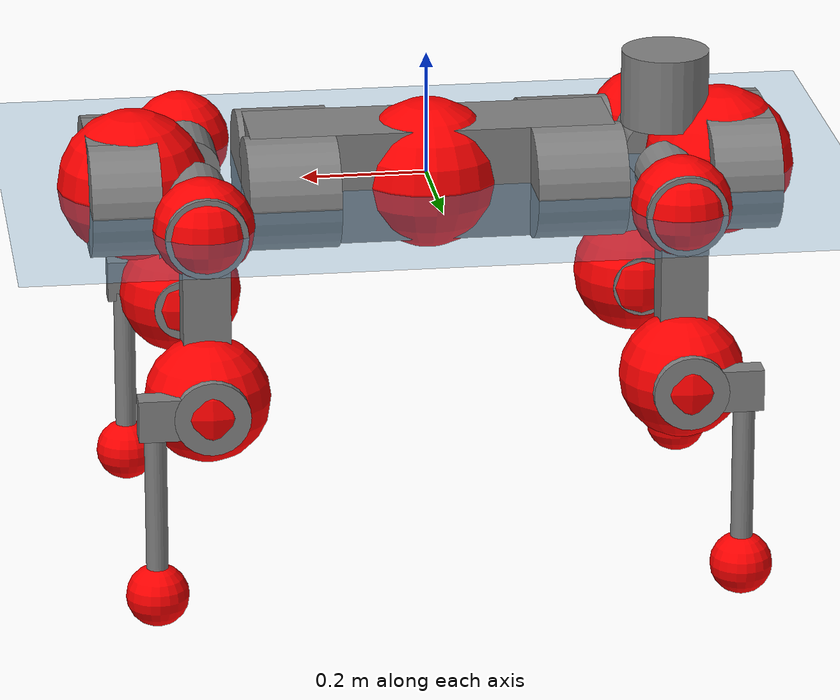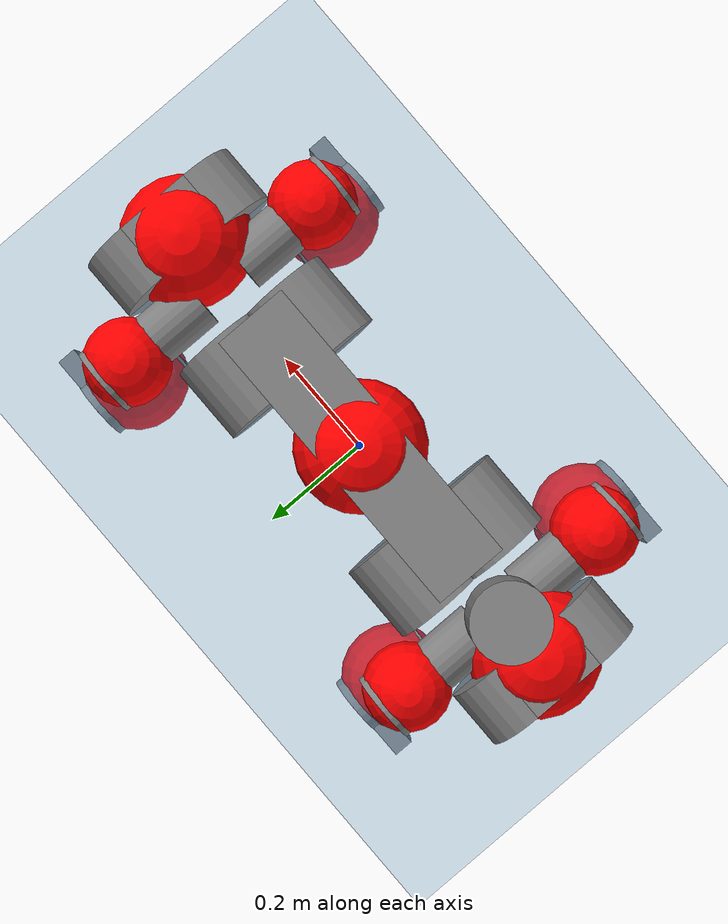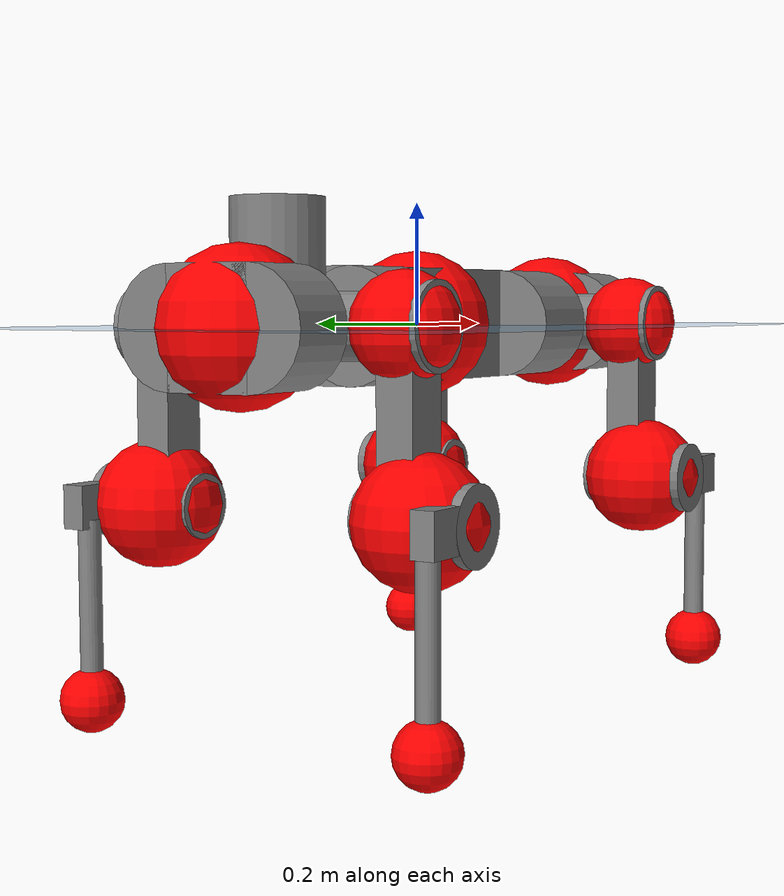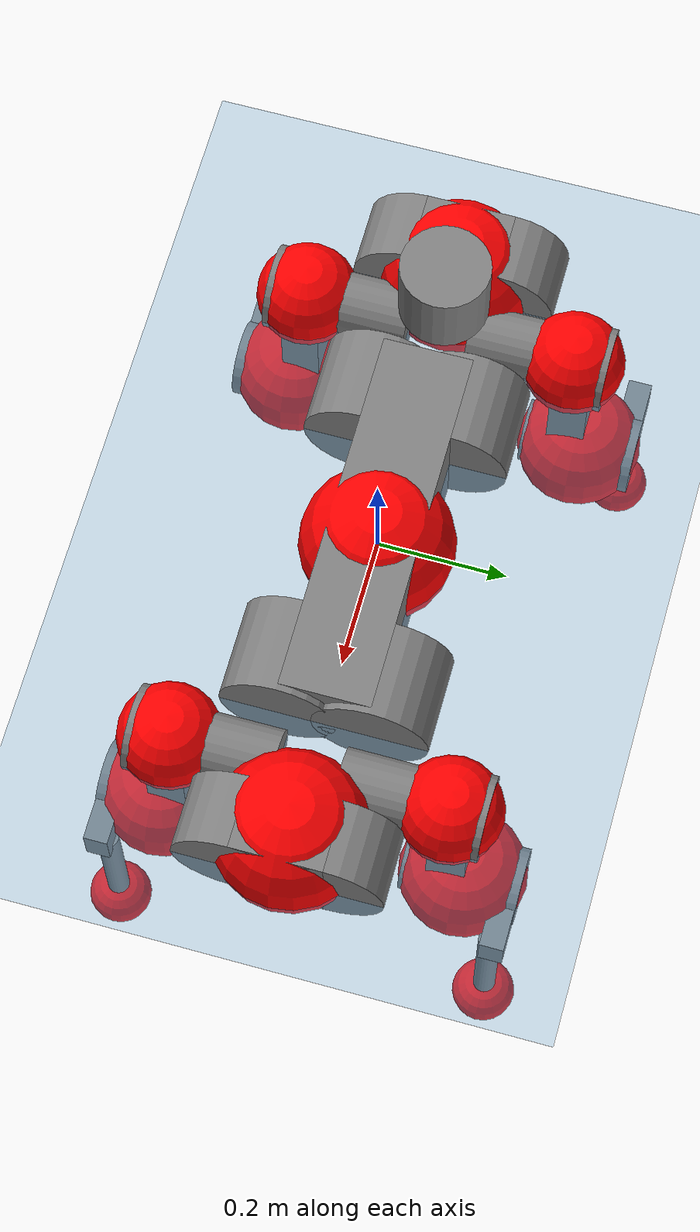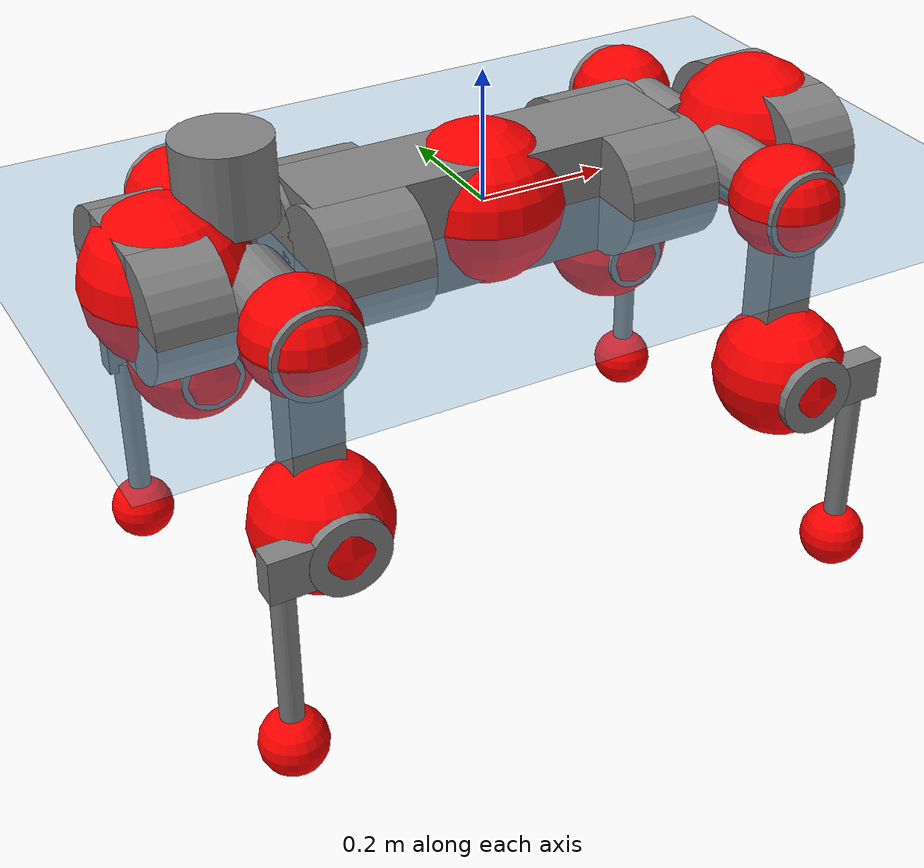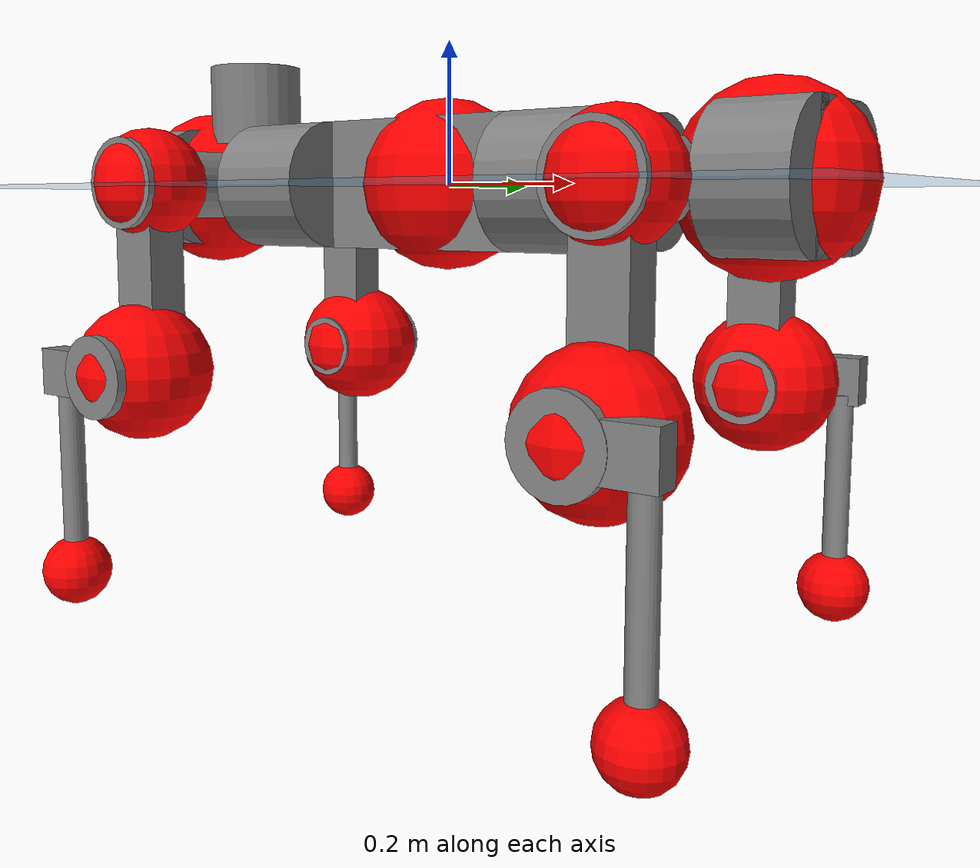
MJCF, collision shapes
<mujoco model="anymal_c">
  <compiler angle="radian" assetdir="assets" balanceinertia="true" inertiafromgeom="false"/>

  <option timestep="0.005" density="1.2" viscosity="2e-05"/>

  <size nkey="1"/>

  <visual>
    <quality shadowsize="8192"/>
    <map shadowclip="0.5"/>
  </visual>

  <default>
    <default class="/">
      <material specular="0" shininess="0.25"/>
      <geom contype="0" conaffinity="0" group="1" solref="-1000 -80"/>
      <site size="0.01 0.005 0.005" group="5"/>
      <general forcelimited="true" forcerange="-80 80" biastype="affine" gainprm="80" biasprm="0 -80 -2"/>
      <default class="anymal_c">
        <joint armature="0.01" damping="0.01" frictionloss="0.1"/>
        <default class="visual">
          <geom type="mesh" group="2"/>
          <default class="visual_zflip"/>
        </default>
        <default class="collision">
          <geom type="cylinder" group="3"/>
          <default class="foot">
            <geom size="0.03 0 0" type="sphere" condim="6" priority="1" friction="0.8 0.02 0.01" solimp="0.015 1 0.03"/>
          </default>
        </default>
      </default>
      <default class="reward_collision_sphere">
        <geom group="5" rgba="1 0 0 1"/>
      </default>
    </default>
  </default>

  <asset>
    <texture type="skybox" colorspace="auto" name="//unnamed_texture_0" builtin="gradient" rgb1="0.95 0.95 0.95" rgb2="0.95 0.95 0.95" width="100" height="600"/>
    <texture type="2d" colorspace="auto" name="texplane" builtin="checker" rgb1="0.345 0.575 0.748" rgb2="0.345 0.575 0.748" markrgb="1 1 1" width="512" height="512"/>
    <texture type="2d" colorspace="linear" name="base" file="base.png"/>
    <texture type="2d" colorspace="linear" name="top_shell" file="top_shell.png"/>
    <texture type="2d" colorspace="linear" name="bottom_shell" file="bottom_shell.png"/>
    <texture type="2d" colorspace="linear" name="remote" file="remote.png"/>
    <texture type="2d" colorspace="linear" name="hatch" file="hatch.png"/>
    <texture type="2d" colorspace="linear" name="handle" file="handle.png"/>
    <texture type="2d" colorspace="linear" name="face" file="face.png"/>
    <texture type="2d" colorspace="linear" name="battery" file="battery.png"/>
    <texture type="2d" colorspace="linear" name="lidar_cage" file="lidar_cage.png"/>
    <texture type="2d" colorspace="linear" name="depth_camera" file="depth_camera.png"/>
    <texture type="2d" colorspace="linear" name="wide_angle_camera" file="wide_angle_camera.png"/>
    <texture type="2d" colorspace="linear" name="lidar" file="lidar.png"/>
    <texture type="2d" colorspace="linear" name="drive" file="drive.png"/>
    <texture type="2d" colorspace="linear" name="hip_l" file="hip_l.png"/>
    <texture type="2d" colorspace="linear" name="shank_l" file="shank_l.png"/>
    <texture type="2d" colorspace="linear" name="foot" file="foot.png"/>
    <texture type="2d" colorspace="linear" name="thigh" file="thigh.png"/>
    <texture type="2d" colorspace="linear" name="shank_r" file="shank_r.png"/>
    <texture type="2d" colorspace="linear" name="hip_r" file="hip_r.png"/>
    <material name="MatPlane" class="/" texture="texplane" texuniform="true" texrepeat="2 2" specular="0.9" shininess="0.5"/>
    <material name="black_plastic" class="/" rgba="0.007 0.007 0.007 1"/>
    <material name="green" class="/" rgba="0.052 0.178 0.033 1"/>
    <material name="red" class="/" rgba="0.178 0.006 0.005 1"/>
    <material name="yellow" class="/" rgba="0.178 0.119 0.006 1"/>
    <material name="lwl" class="/" rgba="0.8 0.8 0.8 1"/>
    <material name="base" class="/" texture="base"/>
    <material name="top_shell" class="/" texture="top_shell"/>
    <material name="bottom_shell" class="/" texture="bottom_shell"/>
    <material name="hip_l" class="/" texture="hip_l"/>
    <material name="thigh" class="/" texture="thigh"/>
    <material name="shank_l" class="/" texture="shank_l"/>
    <material name="foot" class="/" texture="foot"/>
    <material name="hip_r" class="/" texture="hip_r"/>
    <material name="shank" class="/" texture="shank_r"/>
    <material name="hatch" class="/" texture="hatch"/>
    <material name="remote" class="/" texture="remote"/>
    <material name="handle" class="/" texture="handle"/>
    <material name="face" class="/" texture="face"/>
    <material name="depth_camera" class="/" texture="depth_camera"/>
    <material name="wide_angle_camera" class="/" texture="wide_angle_camera"/>
    <material name="battery" class="/" texture="battery"/>
    <material name="lidar_cage" class="/" texture="lidar_cage"/>
    <material name="lidar" class="/" texture="lidar"/>
    <material name="drive" class="/" texture="drive"/>
    <mesh name="base_0" class="/" file="base_0.obj"/>
    <mesh name="base_1" class="/" file="base_1.obj"/>
    <mesh name="base_2" class="/" file="base_2.obj"/>
    <mesh name="base_3" class="/" file="base_3.obj"/>
    <mesh name="base_4" class="/" file="base_4.obj"/>
    <mesh name="base_5" class="/" file="base_5.obj"/>
    <mesh name="top_shell" class="/" file="top_shell.obj"/>
    <mesh name="bottom_shell" class="/" file="bottom_shell.obj"/>
    <mesh name="remote" class="/" file="remote.obj"/>
    <mesh name="handle" class="/" file="handle.obj"/>
    <mesh name="face" class="/" file="face.obj"/>
    <mesh name="wide_angle_camera" class="/" file="wide_angle_camera.obj"/>
    <mesh name="depth_camera" class="/" file="depth_camera.obj"/>
    <mesh name="battery" class="/" file="battery.obj"/>
    <mesh name="lidar_cage" class="/" file="lidar_cage.obj"/>
    <mesh name="lidar" class="/" file="lidar.obj"/>
    <mesh name="drive" class="/" file="drive.obj"/>
    <mesh name="hip_l" class="/" file="hip_l.obj"/>
    <mesh name="thigh" class="/" file="thigh.obj"/>
    <mesh name="shank_l" class="/" file="shank_l.obj"/>
    <mesh name="foot" class="/" file="foot.obj"/>
    <mesh name="hip_r" class="/" file="hip_r.obj"/>
    <mesh name="hatch" class="/" file="hatch.obj"/>
    <mesh name="shank_r" class="/" file="shank_r.obj"/>
  </asset>

  <worldbody>
    <geom name="floor" class="/" size="100 100 0.125" type="plane" group="0" material="MatPlane"/>
    <light name="toplight_shadow" class="/" pos="0 0 5" dir="0.0990148 0.0990148 -0.990148" type="directional" ambient="0.04 0.04 0.04" diffuse="0.55 0.55 0.55" specular="0.12 0.12 0.12"/>
    <light name="toplight_fill" class="/" pos="0 0 5" dir="0.0990148 0.0990148 -0.990148" type="directional" castshadow="false" ambient="0.04 0.04 0.04" diffuse="0.3 0.3 0.3" specular="0.08 0.08 0.08"/>
    <body name="trunk" childclass="anymal_c" pos="-0.00247552 -0.000951582 0.000939709" quat="1 -0.000554402 -0.000462355 0.00044858">
      <inertial pos="-0.000100595 -0.000361833 0.0469368" quat="0.502744 0.499245 0.501417 0.496572" mass="19.0674" diaginertia="0.828004 0.640452 0.178597"/>
      <joint name="//unnamed_joint_0" type="free" armature="0" damping="0" frictionloss="0"/>
      <geom name="//unnamed_geom_1" class="visual" material="green" mesh="base_0"/>
      <geom name="//unnamed_geom_2" class="visual" material="yellow" mesh="base_1"/>
      <geom name="//unnamed_geom_3" class="visual" material="red" mesh="base_2"/>
      <geom name="//unnamed_geom_4" class="visual" material="black_plastic" mesh="base_3"/>
      <geom name="//unnamed_geom_5" class="visual" material="lwl" mesh="base_4"/>
      <geom name="//unnamed_geom_6" class="visual" material="base" mesh="base_5"/>
      <geom name="trunk_1" class="collision" size="0.291466 0.0703539 0.090455" type="box"/>
      <geom name="trunk_2" class="collision" size="0.090455 0.0728665" pos="0.228767 0.0703792 0" quat="0.707107 0 0.707107 0"/>
      <geom name="trunk_3" class="collision" size="0.090455 0.0728665" pos="-0.228767 0.0703792 0" quat="0.707107 0 0.707107 0"/>
      <geom name="trunk_4" class="collision" size="0.090455 0.0728665" pos="0.228767 -0.0703792 0" quat="0.707107 0 0.707107 0"/>
      <geom name="trunk_5" class="collision" size="0.090455 0.0728665" pos="-0.228767 -0.0703792 0" quat="0.707107 0 0.707107 0"/>
      <geom name="//unnamed_geom_12" class="visual" material="top_shell" mesh="top_shell"/>
      <geom name="//unnamed_geom_13" class="visual" material="bottom_shell" mesh="bottom_shell"/>
      <geom name="//unnamed_geom_14" class="visual" material="remote" mesh="remote"/>
      <geom name="//unnamed_geom_15" class="visual" material="handle" mesh="handle"/>
      <geom name="//unnamed_geom_16" class="visual" pos="0.435972 0 0" quat="1 0 0 0" material="face" mesh="face"/>
      <geom name="trunk_6" class="collision" size="0.055278 0.0703539 0.090455" pos="0.493821 0 0" type="box"/>
      <geom name="//unnamed_geom_18" class="collision" size="0.090455 0.055278" pos="0.493821 0.0703792 0" quat="0.707107 0 0.707107 0"/>
      <geom name="//unnamed_geom_19" class="collision" size="0.090455 0.055278" pos="0.493821 -0.0703792 0" quat="0.707107 0 0.707107 0"/>
      <geom name="//unnamed_geom_20" class="visual" pos="0.48556 0 -0.0272588" quat="0.965926 0 0.258819 0" material="depth_camera" mesh="depth_camera"/>
      <geom name="//unnamed_geom_21" class="visual" pos="0.539574 0 0.0143405" material="wide_angle_camera" mesh="wide_angle_camera"/>
      <geom name="//unnamed_geom_22" class="visual_zflip" pos="-0.435972 0 0" quat="0 0 0 1" material="face" mesh="face"/>
      <geom name="trunk_7" class="collision" size="0.055278 0.0703539 0.090455" pos="-0.493821 0 0" quat="0 0 0 1" type="box"/>
      <geom name="//unnamed_geom_24" class="collision" size="0.090455 0.055278" pos="-0.493821 -0.0703792 0" quat="0 -0.707107 0 0.707107"/>
      <geom name="//unnamed_geom_25" class="collision" size="0.090455 0.055278" pos="-0.493821 0.0703792 0" quat="0 -0.707107 0 0.707107"/>
      <geom name="//unnamed_geom_26" class="visual" pos="-0.48556 0 -0.0272588" quat="0 -0.258819 0 0.965926" material="depth_camera" mesh="depth_camera"/>
      <geom name="//unnamed_geom_27" class="visual_zflip" pos="-0.539574 0 0.0143405" quat="0 0 0 1" material="wide_angle_camera" mesh="wide_angle_camera"/>
      <geom name="//unnamed_geom_28" class="visual" material="battery" mesh="battery"/>
      <geom name="//unnamed_geom_29" class="visual" pos="0 0.0762616 0.0285417" quat="0.683013 -0.183013 0.183013 0.683013" material="depth_camera" mesh="depth_camera"/>
      <geom name="//unnamed_geom_30" class="visual" pos="0 -0.0762616 0.0285417" quat="0.683013 0.183013 0.183013 -0.683013" material="depth_camera" mesh="depth_camera"/>
      <geom name="//unnamed_geom_31" class="visual" pos="-0.382856 0 0.0704092" quat="1 0 0 0" material="lidar_cage" mesh="lidar_cage"/>
      <geom name="trunk_8" class="collision" size="0.0703539 0.0603033" pos="-0.382856 0 0.127886"/>
      <geom name="//unnamed_geom_33" class="visual" pos="-0.382856 -1.82234e-05 0.13622" quat="0.707107 0 0 -0.707107" material="lidar" mesh="lidar"/>
      <geom name="//unnamed_geom_34" class="visual" pos="0.315435 0.104546 8.18848e-10" quat="0.258819 0.965926 0 0" material="drive" mesh="drive"/>
      <geom name="//unnamed_geom_35" class="visual" pos="0.315435 -0.104546 -8.18848e-10" quat="0.258819 -0.965926 0 0" material="drive" mesh="drive"/>
      <geom name="//unnamed_geom_36" class="visual" pos="-0.315435 0.104546 -8.18848e-10" quat="0 0 0.965926 -0.258819" material="drive" mesh="drive"/>
      <geom name="//unnamed_geom_37" class="visual" pos="-0.315435 -0.104546 8.18848e-10" quat="0 0 -0.965926 -0.258819" material="drive" mesh="drive"/>
      <geom name="//unnamed_geom_38" class="visual" pos="0.122009 0 0.0699302" quat="1 0 0 0" material="hatch" mesh="hatch"/>
      <geom name="//unnamed_geom_39" class="reward_collision_sphere" size="0.120607"/>
      <geom name="//unnamed_geom_40" class="reward_collision_sphere" size="0.120607" pos="0.473311 0 0"/>
      <geom name="//unnamed_geom_41" class="reward_collision_sphere" size="0.120607" pos="-0.473311 0 0"/>
      <site name="imu" pos="0.262007 0.00332911 0.0491797" size="0.0100506"/>
      <camera name="track" pos="0 -2.01083 0" quat="0.707107 0.707107 0 0" mode="trackcom"/>
      <camera name="ego_camera" pos="0.473311 0 -0.0383179" quat="-0.5 -0.5 0.5 0.5"/>
      <body name="LF_HIP" pos="0.31631 0.104862 -0.00064955" quat="0.259607 0.965714 -0.000837368 -0.000133579">
        <inertial pos="0.0570806 -0.0147499 -0.00761401" quat="-0.128999 0.711114 -0.134396 0.677948" mass="2.88963" diaginertia="0.00774601 0.0050311 0.00271887"/>
        <joint name="LF_HAA" pos="0 0 0" axis="0.999999 0.00127192 -0.000901314" range="-0.729532 0.448583" armature="0.0107731" damping="0.00629893" frictionloss="0.0963228"/>
        <geom name="//unnamed_geom_42" class="visual" pos="0 4.81691e-05 -7.91174e-06" quat="0.258819 -0.965926 0 0" material="hip_l" mesh="hip_l"/>
        <geom name="//unnamed_geom_43" class="visual" pos="0.0630029 -0.0757139 -0.0433623" quat="0.183013 -0.683013 0.683013 0.183013" material="drive" mesh="drive"/>
        <geom name="//unnamed_geom_44" class="collision" size="0.0502528 0.0703539" pos="0.0630029 -0.0120246 -0.00661463" quat="-0.353553 -0.612372 0.612372 -0.353553"/>
        <body name="LF_THIGH" pos="0.0635927 -0.0742738 -0.0406928" quat="0.182765 -0.683 0.683068 0.183101">
          <inertial pos="0.0350911 0.000402965 -0.233084" quat="0.993161 -0.00678888 -0.0822171 0.0826131" mass="3.14315" diaginertia="0.0385814 0.0302637 0.00340675"/>
          <joint name="LF_HFE" pos="0 0 0" axis="1 0.000579148 0.000374643" stiffness="0.0140952" range="-3.17992 3.16501" armature="0.0107178" damping="0" frictionloss="0.0983851"/>
          <geom name="//unnamed_geom_45" class="visual" pos="0.00092288 1.45424e-06 0" quat="0.707107 0 0 -0.707107" material="thigh" mesh="thigh"/>
          <geom name="//unnamed_geom_46" class="collision" size="0.0653286 0.0402022" pos="0.0420721 0 0" quat="0.5 0.5 -0.5 -0.5"/>
          <geom name="//unnamed_geom_47" class="collision" size="0.0376896 0.0301517 0.142028" pos="0.0315541 0 -0.135371" quat="0.707107 0 0 -0.707107" type="box"/>
          <geom name="//unnamed_geom_48" class="visual" pos="0.105496 0 -0.273015" quat="1 0 0 0" material="drive" mesh="drive"/>
          <geom name="//unnamed_geom_49" class="collision" size="0.0502528 0.0703539" pos="0.0318696 0 -0.273015" quat="0.707107 0 0.707107 0"/>
          <geom name="//unnamed_geom_50" class="reward_collision_sphere" size="0.0804044" pos="0.026295 0 0"/>
          <body name="LF_SHANK" pos="0.105308 -0.000402206 -0.273711" quat="1 0.000106293 0.000121915 0.000163083">
            <inertial pos="0.00593843 -0.0617674 -0.0785997" quat="0.993219 -0.114757 -0.00740924 -0.0170691" mass="0.589996" diaginertia="0.0132573 0.00944951 0.000895248"/>
            <joint name="LF_KFE" pos="0 0 0" axis="0.999976 0.00664969 0.00192274" range="-3.15103 3.10145" armature="0.0101321" damping="0.00936681" frictionloss="0.0999002"/>
            <geom name="//unnamed_geom_51" class="visual" pos="0.000300931 0.00160458 0" quat="0.707107 0 0 -0.707107" material="shank_l" mesh="shank_l"/>
            <geom name="LF_kfe_act" class="collision" size="0.0603033 0.0201011" pos="0.021036 0 0" quat="0.5 0.5 -0.5 -0.5"/>
            <geom name="//unnamed_geom_53" class="collision" size="0.0577897 0.0339206 0.0190961" pos="0.021036 -0.0578105 0" quat="0.5 0.5 -0.5 -0.5" type="box"/>
            <geom name="//unnamed_geom_54" class="visual" pos="0.0137259 -0.0879093 -0.323758" quat="0.382683 0 0 -0.92388" material="foot" mesh="foot"/>
            <geom name="LF_calf" class="collision" size="0.0175885 0.141966" pos="0.013726 -0.0884264 -0.161879" quat="0.707107 0 0 -0.707107"/>
            <geom name="LF_foot" class="foot" size="0.0304148" pos="0.013726 -0.0884264 -0.302204" quat="0.707107 0 0 -0.707107"/>
            <geom name="//unnamed_geom_57" class="reward_collision_sphere" size="0.100506" pos="-0.0525901 0 0"/>
            <geom name="//unnamed_geom_58" class="reward_collision_sphere" size="0.0502528" pos="0.013726 -0.0884264 -0.302204"/>
            <site name="LF_foot" class="foot" pos="0.013726 -0.0884264 -0.302204" quat="0.707107 0 0 -0.707107" size="0.0100506"/>
          </body>
        </body>
      </body>
      <body name="RF_HIP" pos="0.315805 -0.103042 0.00160845" quat="0.258438 -0.966028 0.000216147 8.86905e-05">
        <inertial pos="0.06136 0.0146691 -0.00791781" quat="0.136166 0.677801 0.128749 0.710963" mass="2.94772" diaginertia="0.00763186 0.00515376 0.00266858"/>
        <joint name="RF_HAA" pos="0 0 0" axis="0.999997 0.00166985 0.00151523" range="-0.493055 0.718675" armature="0.00876212" damping="0.00894656" frictionloss="0.113097"/>
        <geom name="//unnamed_geom_59" class="visual" pos="0 -4.81687e-05 -7.91171e-06" quat="0.258819 0.965926 0 0" material="hip_r" mesh="hip_r"/>
        <geom name="//unnamed_geom_60" class="visual" pos="0.0630029 0.0757139 -0.0433623" quat="0.183013 0.683013 0.683013 -0.183013" material="drive" mesh="drive"/>
        <geom name="//unnamed_geom_61" class="collision" size="0.0502528 0.0703539" pos="0.0630029 0.0120246 -0.00661463" quat="-0.353553 0.612372 0.612372 0.353553"/>
        <body name="RF_THIGH" pos="0.0632513 0.072998 -0.0386928" quat="0.182233 0.682846 0.683189 -0.183754">
          <inertial pos="0.0314331 -0.00267955 -0.23398" quat="0.992764 -0.0045571 -0.0806921 0.0888137" mass="3.05467" diaginertia="0.0392781 0.0313932 0.00334755"/>
          <joint name="RF_HFE" pos="0 0 0" axis="0.999986 -0.00115113 -0.00518997" stiffness="0.00451945" range="-3.12062 3.15857" armature="0.0100994" damping="0.0105515" frictionloss="0.0964759"/>
          <geom name="//unnamed_geom_62" class="visual" pos="0.00092288 1.45424e-06 0" quat="0.707107 0 0 -0.707107" material="thigh" mesh="thigh"/>
          <geom name="//unnamed_geom_63" class="collision" size="0.0653286 0.0402022" pos="0.0420721 0 0" quat="0.5 0.5 0.5 0.5"/>
          <geom name="//unnamed_geom_64" class="collision" size="0.0376896 0.0301517 0.142028" pos="0.0315541 0 -0.135371" quat="0.707107 0 0 0.707107" type="box"/>
          <geom name="//unnamed_geom_65" class="visual" pos="0.105496 0 -0.273015" quat="1 0 0 0" material="drive" mesh="drive"/>
          <geom name="//unnamed_geom_66" class="collision" size="0.0502528 0.0703539" pos="0.0318696 0 -0.273015" quat="0.707107 0 0.707107 0"/>
          <geom name="//unnamed_geom_67" class="reward_collision_sphere" size="0.0804044" pos="0.026295 0 0"/>
          <body name="RF_SHANK" pos="0.105551 9.72206e-05 -0.271856" quat="1 -2.62769e-05 -2.69074e-05 -4.18594e-06">
            <inertial pos="0.00578001 0.0614721 -0.0761406" quat="0.992879 0.116351 -0.000909164 0.0255343" mass="0.603486" diaginertia="0.0137023 0.0095682 0.000927359"/>
            <joint name="RF_KFE" pos="0 0 0" axis="0.999931 0.0114842 -0.00261935" range="-3.13937 3.1298" armature="0.0103282" damping="0.00770719" frictionloss="0.0960663"/>
            <geom name="//unnamed_geom_68" class="visual" pos="0.000300929 -0.00160458 0" quat="0.707107 0 0 0.707107" material="shank" mesh="shank_r"/>
            <geom name="RF_kfe_act" class="collision" size="0.0603033 0.0201011" pos="0.021036 0 0" quat="0.5 0.5 0.5 0.5"/>
            <geom name="//unnamed_geom_70" class="collision" size="0.0577897 0.0339206 0.0190961" pos="0.021036 0.0578105 0" quat="0.5 0.5 0.5 0.5" type="box"/>
            <geom name="//unnamed_geom_71" class="visual" pos="0.0137261 0.0879093 -0.323758" quat="0.382683 0 0 0.92388" material="foot" mesh="foot"/>
            <geom name="RF_calf" class="collision" size="0.0175885 0.141966" pos="0.013726 0.0884264 -0.161879" quat="0.707107 0 0 0.707107"/>
            <geom name="RF_foot" class="foot" size="0.0300177" pos="0.013726 0.0884264 -0.302204" quat="0.707107 0 0 0.707107"/>
            <geom name="//unnamed_geom_74" class="reward_collision_sphere" size="0.100506" pos="-0.0525901 0 0"/>
            <geom name="//unnamed_geom_75" class="reward_collision_sphere" size="0.0502528" pos="0.013726 0.0884264 -0.302204"/>
            <site name="RF_foot" class="foot" pos="0.013726 0.0884264 -0.302204" quat="0.707107 0 0 0.707107" size="0.0100506"/>
          </body>
        </body>
      </body>
      <body name="LH_HIP" pos="-0.314976 0.103494 0.000942381" quat="-0.000218865 -0.0012962 0.965962 -0.258679">
        <inertial pos="0.0622346 0.015914 -0.00752582" quat="0.135473 0.678971 0.12777 0.710155" mass="2.81249" diaginertia="0.00757997 0.00515708 0.00269867"/>
        <joint name="LH_HAA" pos="0 0 0" axis="0.999996 0.00221688 -0.00144585" range="-0.48428 0.723563" armature="0.00998572" damping="0.00814883" frictionloss="0.0957252"/>
        <geom name="//unnamed_geom_76" class="visual" pos="0 -4.81687e-05 -7.91171e-06" quat="-0.258819 -0.965926 0 0" material="hip_r" mesh="hip_r"/>
        <geom name="//unnamed_geom_77" class="visual" pos="0.0630029 0.0757139 -0.0433623" quat="0.183013 0.683013 0.683013 -0.183013" material="drive" mesh="drive"/>
        <geom name="//unnamed_geom_78" class="collision" size="0.0502528 0.0703539" pos="0.0630029 0.0120246 -0.00661463" quat="-0.353553 0.612372 0.612372 0.353553"/>
        <body name="LH_THIGH" pos="0.0598656 0.0722906 -0.0393944" quat="0.182106 0.683013 0.683155 -0.183382">
          <inertial pos="0.0326895 0.000216184 -0.234959" quat="0.99278 -0.0150071 -0.0823749 0.0858841" mass="3.04688" diaginertia="0.0384846 0.0301523 0.00333406"/>
          <joint name="LH_HFE" pos="0 0 0" axis="0.999987 0.000744426 0.00508566" range="-3.14056 3.14616" armature="0.00971627" damping="0" frictionloss="0.105735"/>
          <geom name="//unnamed_geom_79" class="visual" pos="0.00092288 1.45424e-06 0" quat="0.707107 0 0 -0.707107" material="thigh" mesh="thigh"/>
          <geom name="//unnamed_geom_80" class="collision" size="0.0653286 0.0402022" pos="0.0420721 0 0" quat="0.5 0.5 -0.5 -0.5"/>
          <geom name="//unnamed_geom_81" class="collision" size="0.0376896 0.0301517 0.142028" pos="0.0315541 0 -0.135371" quat="0.707107 0 0 -0.707107" type="box"/>
          <geom name="//unnamed_geom_82" class="visual" pos="0.105496 0 -0.273015" quat="1 0 0 0" material="drive" mesh="drive"/>
          <geom name="//unnamed_geom_83" class="collision" size="0.0502528 0.0703539" pos="0.0318696 0 -0.273015" quat="0.707107 0 0.707107 0"/>
          <geom name="//unnamed_geom_84" class="reward_collision_sphere" size="0.0804044" pos="0.026295 0 0"/>
          <body name="LH_SHANK" pos="0.104182 -0.000729751 -0.273516" quat="1 -0.000132024 -0.000172283 -1.16948e-05">
            <inertial pos="0.00583984 0.0614271 -0.0772072" quat="0.992895 0.116278 -0.00194086 0.0252113" mass="0.596763" diaginertia="0.0130481 0.00948457 0.000894119"/>
            <joint name="LH_KFE" pos="0 0 0" axis="0.999977 -0.00204397 0.00646272" range="-3.12338 3.14218" armature="0.0103855" damping="0" frictionloss="0.100482"/>
            <geom name="//unnamed_geom_85" class="visual" pos="0.000300929 -0.00160458 0" quat="-0.707107 0 0 -0.707107" material="shank" mesh="shank_r"/>
            <geom name="LH_kfe_act" class="collision" size="0.0603033 0.0201011" pos="0.021036 0 0" quat="0.5 0.5 -0.5 -0.5"/>
            <geom name="//unnamed_geom_87" class="collision" size="0.0577897 0.0339206 0.0190961" pos="0.021036 0.0578105 0" quat="0.5 0.5 -0.5 -0.5" type="box"/>
            <geom name="//unnamed_geom_88" class="visual" pos="0.0137261 0.0879093 -0.323758" quat="-0.382683 0 0 -0.92388" material="foot" mesh="foot"/>
            <geom name="LH_calf" class="collision" size="0.0175885 0.141966" pos="0.013726 0.0884264 -0.161879" quat="0.707107 0 0 -0.707107"/>
            <geom name="LH_foot" class="foot" size="0.0321618" pos="0.013726 0.0884264 -0.302204" quat="0.707107 0 0 -0.707107"/>
            <geom name="//unnamed_geom_91" class="reward_collision_sphere" size="0.100506" pos="-0.0525901 0 0"/>
            <geom name="//unnamed_geom_92" class="reward_collision_sphere" size="0.0502528" pos="0.013726 0.0884264 -0.302204"/>
            <site name="LH_foot" class="foot" pos="0.013726 0.0884264 -0.302204" quat="0.707107 0 0 -0.707107" size="0.0100506"/>
          </body>
        </body>
      </body>
      <body name="RH_HIP" pos="-0.316246 -0.107003 0.00187092" quat="0.000513921 6.06687e-05 -0.965914 -0.258862">
        <inertial pos="0.0595978 -0.0139268 -0.0081324" quat="-0.137071 0.712766 -0.137759 0.673943" mass="2.82885" diaginertia="0.00756424 0.00509257 0.00269009"/>
        <joint name="RH_HAA" pos="0 0 0" axis="0.999999 -0.000466497 0.00107122" stiffness="0.00503528" range="-0.725259 0.484844" armature="0.0113725" damping="0.0229984" frictionloss="0.0902654"/>
        <geom name="//unnamed_geom_93" class="visual" pos="0 4.81691e-05 -7.91174e-06" quat="-0.258819 0.965926 0 0" material="hip_l" mesh="hip_l"/>
        <geom name="//unnamed_geom_94" class="visual" pos="0.0630029 -0.0757139 -0.0433623" quat="-0.183013 0.683013 -0.683013 -0.183013" material="drive" mesh="drive"/>
        <geom name="//unnamed_geom_95" class="collision" size="0.0502528 0.0703539" pos="0.0630029 -0.0120246 -0.00661463" quat="0.353553 0.612372 -0.612372 0.353553"/>
        <body name="RH_THIGH" pos="0.063559 -0.0729034 -0.0420971" quat="-0.182747 0.683014 -0.682989 -0.183362">
          <inertial pos="0.0327095 0.000254725 -0.234622" quat="0.993201 -0.00557092 -0.0806166 0.0838014" mass="3.17599" diaginertia="0.0398382 0.0311814 0.00332122"/>
          <joint name="RH_HFE" pos="0 0 0" axis="0.999986 0.00298105 0.00442911" range="-3.18568 3.1534" armature="0.00997255" damping="0.0112053" frictionloss="0.105246"/>
          <geom name="//unnamed_geom_96" class="visual" pos="0.00092288 1.45424e-06 0" quat="0.707107 0 0 -0.707107" material="thigh" mesh="thigh"/>
          <geom name="//unnamed_geom_97" class="collision" size="0.0653286 0.0402022" pos="0.0420721 0 0" quat="0.5 0.5 0.5 0.5"/>
          <geom name="//unnamed_geom_98" class="collision" size="0.0376896 0.0301517 0.142028" pos="0.0315541 0 -0.135371" quat="0.707107 0 0 0.707107" type="box"/>
          <geom name="//unnamed_geom_99" class="visual" pos="0.105496 0 -0.273015" quat="1 0 0 0" material="drive" mesh="drive"/>
          <geom name="//unnamed_geom_100" class="collision" size="0.0502528 0.0703539" pos="0.0318696 0 -0.273015" quat="0.707107 0 0.707107 0"/>
          <geom name="//unnamed_geom_101" class="reward_collision_sphere" size="0.0804044" pos="0.026295 0 0"/>
          <body name="RH_SHANK" pos="0.102494 0.00154206 -0.273342" quat="1 0.000210165 8.55167e-05 -0.000164387">
            <inertial pos="0.00843311 -0.0613501 -0.0773849" quat="0.992672 -0.118749 -0.00286973 -0.0221769" mass="0.597148" diaginertia="0.0126546 0.00906085 0.000882144"/>
            <joint name="RH_KFE" pos="0 0 0" axis="0.999993 0.00314189 -0.00216922" range="-3.09695 3.18791" armature="0.00922524" damping="0.00692109" frictionloss="0.0955739"/>
            <geom name="//unnamed_geom_102" class="visual" pos="0.000300931 0.00160458 0" quat="0.707107 0 0 -0.707107" material="shank_l" mesh="shank_l"/>
            <geom name="RH_kfe_act" class="collision" size="0.0603033 0.0201011" pos="0.021036 0 0" quat="0.5 0.5 0.5 0.5"/>
            <geom name="//unnamed_geom_104" class="collision" size="0.0577897 0.0339206 0.0190961" pos="0.021036 -0.0578105 0" quat="0.5 0.5 0.5 0.5" type="box"/>
            <geom name="//unnamed_geom_105" class="visual" pos="0.0137259 -0.0879093 -0.323758" quat="0.382683 0 0 -0.92388" material="foot" mesh="foot"/>
            <geom name="RH_calf" class="collision" size="0.0175885 0.141966" pos="0.013726 -0.0884264 -0.161879" quat="0.707107 0 0 0.707107"/>
            <geom name="RH_foot" class="foot" size="0.0304108" pos="0.013726 -0.0884264 -0.302204" quat="0.707107 0 0 0.707107"/>
            <geom name="//unnamed_geom_108" class="reward_collision_sphere" size="0.100506" pos="-0.0525901 0 0"/>
            <geom name="//unnamed_geom_109" class="reward_collision_sphere" size="0.0502528" pos="0.013726 -0.0884264 -0.302204"/>
            <site name="RH_foot" class="foot" pos="0.013726 -0.0884264 -0.302204" quat="0.707107 0 0 0.707107" size="0.0100506"/>
          </body>
        </body>
      </body>
    </body>
  </worldbody>

  <contact>
    <pair class="/" geom1="floor" geom2="LF_foot" name="//unnamed_contact_0"/>
    <pair class="/" geom1="floor" geom2="RF_foot" name="//unnamed_contact_1"/>
    <pair class="/" geom1="floor" geom2="LH_foot" name="//unnamed_contact_2"/>
    <pair class="/" geom1="floor" geom2="RH_foot" name="//unnamed_contact_3"/>
  </contact>

  <actuator>
    <general name="LF_HAA" class="/" joint="LF_HAA" forcerange="-81.3357 81.3357" gainprm="81.6695" biasprm="0 -81.6695 -1.8859"/>
    <general name="LF_HFE" class="/" joint="LF_HFE" forcerange="-81.7442 81.7442" gainprm="81.6695" biasprm="0 -81.6695 -1.8859"/>
    <general name="LF_KFE" class="/" joint="LF_KFE" forcerange="-81.2763 81.2763" gainprm="81.6695" biasprm="0 -81.6695 -1.8859"/>
    <general name="RF_HAA" class="/" joint="RF_HAA" forcerange="-88.9014 88.9014" gainprm="81.6695" biasprm="0 -81.6695 -1.8859"/>
    <general name="RF_HFE" class="/" joint="RF_HFE" forcerange="-81.5709 81.5709" gainprm="81.6695" biasprm="0 -81.6695 -1.8859"/>
    <general name="RF_KFE" class="/" joint="RF_KFE" forcerange="-76.9243 76.9243" gainprm="81.6695" biasprm="0 -81.6695 -1.8859"/>
    <general name="LH_HAA" class="/" joint="LH_HAA" forcerange="-79.4828 79.4828" gainprm="81.6695" biasprm="0 -81.6695 -1.8859"/>
    <general name="LH_HFE" class="/" joint="LH_HFE" forcerange="-79.3771 79.3771" gainprm="81.6695" biasprm="0 -81.6695 -1.8859"/>
    <general name="LH_KFE" class="/" joint="LH_KFE" forcerange="-83.0129 83.0129" gainprm="81.6695" biasprm="0 -81.6695 -1.8859"/>
    <general name="RH_HAA" class="/" joint="RH_HAA" forcerange="-80.6938 80.6938" gainprm="81.6695" biasprm="0 -81.6695 -1.8859"/>
    <general name="RH_HFE" class="/" joint="RH_HFE" forcerange="-83.6531 83.6531" gainprm="81.6695" biasprm="0 -81.6695 -1.8859"/>
    <general name="RH_KFE" class="/" joint="RH_KFE" forcerange="-87.4902 87.4902" gainprm="81.6695" biasprm="0 -81.6695 -1.8859"/>
  </actuator>

  <sensor>
    <gyro site="imu" name="imu_angular_velocity"/>
    <velocimeter site="imu" name="imu_linear_velocity"/>
    <framelinvel objtype="site" objname="LF_foot" name="LF_foot_global_linear_velocity"/>
    <framelinvel objtype="site" objname="RF_foot" name="RF_foot_global_linear_velocity"/>
    <framelinvel objtype="site" objname="LH_foot" name="LH_foot_global_linear_velocity"/>
    <framelinvel objtype="site" objname="RH_foot" name="RH_foot_global_linear_velocity"/>
  </sensor>

  <keyframe>
    <key name="home" qpos="0 0 0.55 1 0 0 0 0 0.4 -0.8 0 -0.4 0.8 0 -0.4 0.8 0 0.4 -0.8"/>
  </keyframe>
</mujoco>
